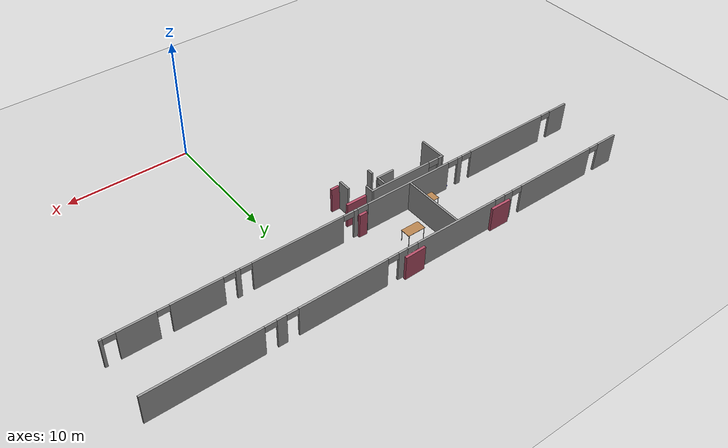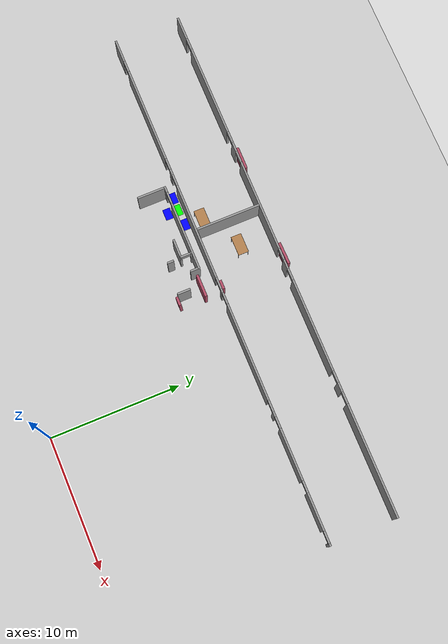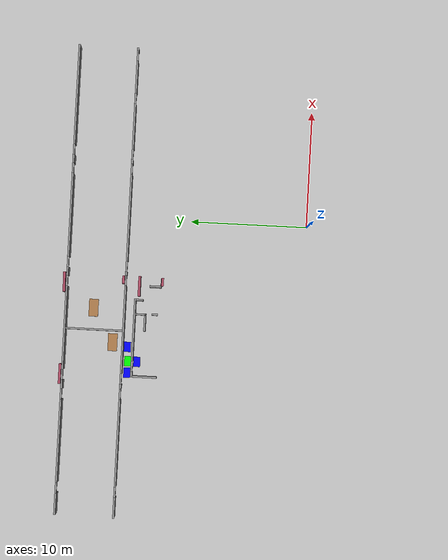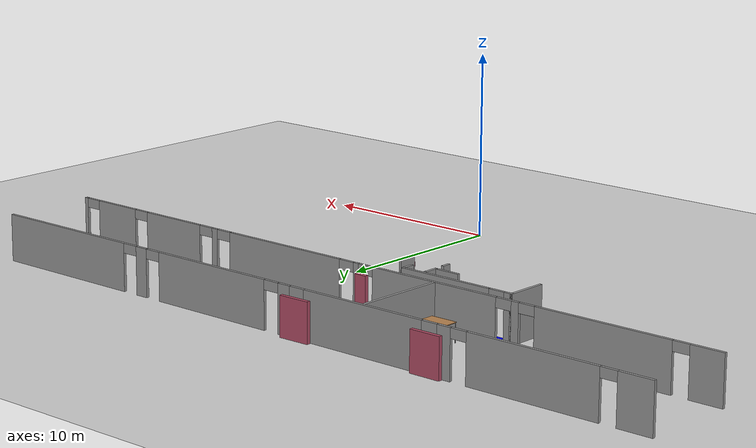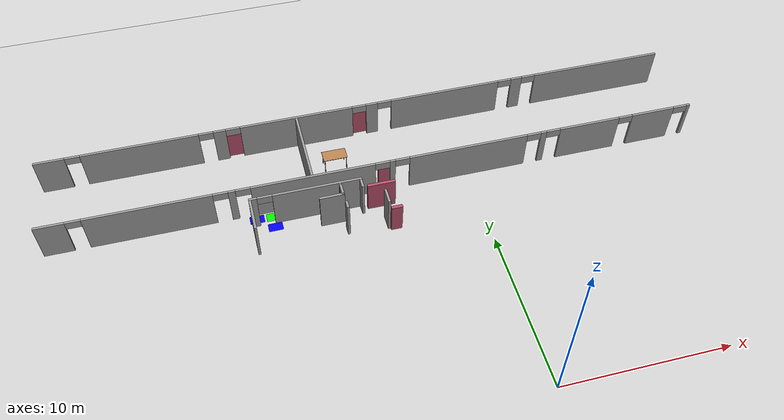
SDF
<sdf version="1.6">
 <world name="default">
  <model name="ground_plane">
   <pose>0 0 0.001 0 -0 0</pose>
   <static>1</static>
   <link name="link">
    <collision name="collision">
     <geometry><plane><normal>0 0 1</normal><size>100 100</size></plane></geometry>
     <surface><friction><ode><mu>100</mu><mu2>50</mu2></ode></friction></surface>
    </collision>
    <visual name="visual">
     <cast_shadows>0</cast_shadows>
     <geometry><plane><normal>0 0 1</normal><size>100 100</size></plane></geometry>
     <material>
      <script><uri>file://media/materials/scripts/gazebo.material</uri><name>Gazebo/Grey</name></script>
     </material>
    </visual>
   </link>
  </model>
  <model name="fin_se1f1.sdf">
   <pose>1.8125 -2.2901 0 0 -0 0</pose>
   <link name="Wall_100">
    <collision name="Wall_100_Collision">
     <geometry><box><size>2.25 0.15 2.5</size></box></geometry>
     <pose>0 0 1.25 0 -0 0</pose>
    </collision>
    <visual name="Wall_100_Visual">
     <pose>0 0 1.25 0 -0 0</pose>
     <geometry><box><size>2.25 0.15 2.5</size></box></geometry>
     <material>
      <script><uri>file://media/materials/scripts/gazebo.material</uri><name>Gazebo/Grey</name></script>
      <ambient>1 1 1 1</ambient>
     </material>
     <meta><layer>0</layer></meta>
    </visual>
    <pose>-15.464 15.7396 0 0 -0 1.5708</pose>
   </link>
   <link name="Wall_101">
    <pose>-12.164 16.7896 0.001 0 -0 0</pose>
    <visual name="Wall_101_Visual_0">
     <pose>-3.13147 0 1.25 0 -0 0</pose>
     <geometry><box><size>0.487063 0.15 2.5</size></box></geometry>
     <material>
      <script><uri>file://media/materials/scripts/gazebo.material</uri><name>Gazebo/Grey</name></script>
      <ambient>1 1 1 1</ambient>
     </material>
     <meta><layer>0</layer></meta>
    </visual>
    <collision name="Wall_101_Collision_0">
     <geometry><box><size>0.487063 0.15 2.5</size></box></geometry>
     <pose>-3.13147 0 1.25 0 -0 0</pose>
    </collision>
    <visual name="Wall_101_Visual_1">
     <pose>0.693532 0 1.25 0 -0 0</pose>
     <geometry><box><size>5.36294 0.15 2.5</size></box></geometry>
     <material>
      <script><uri>file://media/materials/scripts/gazebo.material</uri><name>Gazebo/Grey</name></script>
      <ambient>1 1 1 1</ambient>
     </material>
     <meta><layer>0</layer></meta>
    </visual>
    <collision name="Wall_101_Collision_1">
     <geometry><box><size>5.36294 0.15 2.5</size></box></geometry>
     <pose>0.693532 0 1.25 0 -0 0</pose>
    </collision>
    <visual name="Wall_101_Visual_2">
     <pose>-2.43794 0 2.25 0 -0 0</pose>
     <geometry><box><size>0.9 0.15 0.5</size></box></geometry>
     <material>
      <script><uri>file://media/materials/scripts/gazebo.material</uri><name>Gazebo/Grey</name></script>
      <ambient>1 1 1 1</ambient>
     </material>
     <meta><layer>0</layer></meta>
    </visual>
    <collision name="Wall_101_Collision_2">
     <geometry><box><size>0.9 0.15 0.5</size></box></geometry>
     <pose>-2.43794 0 2.25 0 -0 0</pose>
    </collision>
   </link>
   <link name="Wall_102">
    <collision name="Wall_102_Collision">
     <geometry><box><size>0.75 0.15 2.5</size></box></geometry>
     <pose>0 0 1.25 0 -0 0</pose>
    </collision>
    <visual name="Wall_102_Visual">
     <pose>0 0 1.25 0 -0 0</pose>
     <geometry><box><size>0.75 0.15 2.5</size></box></geometry>
     <material>
      <script><uri>file://media/materials/scripts/gazebo.material</uri><name>Gazebo/Grey</name></script>
      <ambient>1 1 1 1</ambient>
     </material>
     <meta><layer>0</layer></meta>
    </visual>
    <pose>-8.86395 16.4896 0 0 0 -1.5708</pose>
   </link>
   <link name="Wall_127">
    <pose>-10.1137 16.2977 0 0 0 -1.5708</pose>
    <visual name="Wall_127_Visual_0">
     <pose>-0.408972 0 1.25 0 -0 0</pose>
     <geometry><box><size>0.182055 0.15 2.5</size></box></geometry>
     <material>
      <script><uri>file://media/materials/scripts/gazebo.material</uri><name>Gazebo/Grey</name></script>
      <ambient>1 1 1 1</ambient>
     </material>
     <meta><layer>0</layer></meta>
    </visual>
    <collision name="Wall_127_Collision_0">
     <geometry><box><size>0.182055 0.15 2.5</size></box></geometry>
     <pose>-0.408972 0 1.25 0 -0 0</pose>
    </collision>
    <visual name="Wall_127_Visual_1">
     <pose>0.480687 0 1.25 0 -0 0</pose>
     <geometry><box><size>0.038626 0.15 2.5</size></box></geometry>
     <material>
      <script><uri>file://media/materials/scripts/gazebo.material</uri><name>Gazebo/Grey</name></script>
      <ambient>1 1 1 1</ambient>
     </material>
     <meta><layer>0</layer></meta>
    </visual>
    <collision name="Wall_127_Collision_1">
     <geometry><box><size>0.038626 0.15 2.5</size></box></geometry>
     <pose>0.480687 0 1.25 0 -0 0</pose>
    </collision>
    <visual name="Wall_127_Visual_2">
     <pose>0.071714 0 2.25 0 -0 0</pose>
     <geometry><box><size>0.779319 0.15 0.5</size></box></geometry>
     <material>
      <script><uri>file://media/materials/scripts/gazebo.material</uri><name>Gazebo/Grey</name></script>
      <ambient>1 1 1 1</ambient>
     </material>
     <meta><layer>0</layer></meta>
    </visual>
    <collision name="Wall_127_Collision_2">
     <geometry><box><size>0.779319 0.15 0.5</size></box></geometry>
     <pose>0.071714 0 2.25 0 -0 0</pose>
    </collision>
   </link>
   <link name="Wall_128">
    <collision name="Wall_128_Collision">
     <geometry><box><size>1.5 0.15 2.5</size></box></geometry>
     <pose>0 0 1.25 0 -0 0</pose>
    </collision>
    <visual name="Wall_128_Visual">
     <pose>0 0 1.25 0 -0 0</pose>
     <geometry><box><size>1.5 0.15 2.5</size></box></geometry>
     <material>
      <script><uri>file://media/materials/scripts/gazebo.material</uri><name>Gazebo/Grey</name></script>
      <ambient>1 1 1 1</ambient>
     </material>
     <meta><layer>0</layer></meta>
    </visual>
    <pose>-10.7887 15.8727 0 0 -0 3.14159</pose>
   </link>
   <link name="Wall_130">
    <collision name="Wall_130_Collision">
     <geometry><box><size>0.5 0.15 2.5</size></box></geometry>
     <pose>0 0 1.25 0 -0 0</pose>
    </collision>
    <visual name="Wall_130_Visual">
     <pose>0 0 1.25 0 -0 0</pose>
     <geometry><box><size>0.5 0.15 2.5</size></box></geometry>
     <material>
      <script><uri>file://media/materials/scripts/gazebo.material</uri><name>Gazebo/Grey</name></script>
      <ambient>1 1 1 1</ambient>
     </material>
     <meta><layer>0</layer></meta>
    </visual>
    <pose>-10.0602 15.0496 0 0 0 -1.5708</pose>
   </link>
   <link name="Wall_138">
    <collision name="Wall_138_Collision">
     <geometry><box><size>1 0.15 2.5</size></box></geometry>
     <pose>0 0 1.25 0 -0 0</pose>
    </collision>
    <visual name="Wall_138_Visual">
     <pose>0 0 1.25 0 -0 0</pose>
     <geometry><box><size>1 0.15 2.5</size></box></geometry>
     <material>
      <script><uri>file://media/materials/scripts/gazebo.material</uri><name>Gazebo/Grey</name></script>
      <ambient>1 1 1 1</ambient>
     </material>
     <meta><layer>0</layer></meta>
    </visual>
    <pose>-7.65259 15.1146 0 0 -0 1.5708</pose>
   </link>
   <link name="Wall_22">
    <pose>-7.37457 22.7246 0 0 -0 3.14159</pose>
    <visual name="Wall_22_Visual_0">
     <pose>-15.9484 0 1.25 0 -0 0</pose>
     <geometry><box><size>8.60329 0.15 2.5</size></box></geometry>
     <material>
      <script><uri>file://media/materials/scripts/gazebo.material</uri><name>Gazebo/Grey</name></script>
      <ambient>1 1 1 1</ambient>
     </material>
     <meta><layer>0</layer></meta>
    </visual>
    <collision name="Wall_22_Collision_0">
     <geometry><box><size>8.60329 0.15 2.5</size></box></geometry>
     <pose>-15.9484 0 1.25 0 -0 0</pose>
    </collision>
    <visual name="Wall_22_Visual_1">
     <pose>-10.3821 0 1.25 0 -0 0</pose>
     <geometry><box><size>0.729199 0.15 2.5</size></box></geometry>
     <material>
      <script><uri>file://media/materials/scripts/gazebo.material</uri><name>Gazebo/Grey</name></script>
      <ambient>1 1 1 1</ambient>
     </material>
     <meta><layer>0</layer></meta>
    </visual>
    <collision name="Wall_22_Collision_1">
     <geometry><box><size>0.729199 0.15 2.5</size></box></geometry>
     <pose>-10.3821 0 1.25 0 -0 0</pose>
    </collision>
    <visual name="Wall_22_Visual_2">
     <pose>-5.52468 0 1.25 0 -0 0</pose>
     <geometry><box><size>7.18566 0.15 2.5</size></box></geometry>
     <material>
      <script><uri>file://media/materials/scripts/gazebo.material</uri><name>Gazebo/Grey</name></script>
      <ambient>1 1 1 1</ambient>
     </material>
     <meta><layer>0</layer></meta>
    </visual>
    <collision name="Wall_22_Collision_2">
     <geometry><box><size>7.18566 0.15 2.5</size></box></geometry>
     <pose>-5.52468 0 1.25 0 -0 0</pose>
    </collision>
    <visual name="Wall_22_Visual_3">
     <pose>-0.657198 0 1.25 0 -0 0</pose>
     <geometry><box><size>0.749313 0.15 2.5</size></box></geometry>
     <material>
      <script><uri>file://media/materials/scripts/gazebo.material</uri><name>Gazebo/Grey</name></script>
      <ambient>1 1 1 1</ambient>
     </material>
     <meta><layer>0</layer></meta>
    </visual>
    <collision name="Wall_22_Collision_3">
     <geometry><box><size>0.749313 0.15 2.5</size></box></geometry>
     <pose>-0.657198 0 1.25 0 -0 0</pose>
    </collision>
    <visual name="Wall_22_Visual_4">
     <pose>4.19017 0 1.25 0 -0 0</pose>
     <geometry><box><size>7.14543 0.15 2.5</size></box></geometry>
     <material>
      <script><uri>file://media/materials/scripts/gazebo.material</uri><name>Gazebo/Grey</name></script>
      <ambient>1 1 1 1</ambient>
     </material>
     <meta><layer>0</layer></meta>
    </visual>
    <collision name="Wall_22_Collision_4">
     <geometry><box><size>7.14543 0.15 2.5</size></box></geometry>
     <pose>4.19017 0 1.25 0 -0 0</pose>
    </collision>
    <visual name="Wall_22_Visual_5">
     <pose>9.0476 0 1.25 0 -0 0</pose>
     <geometry><box><size>0.769426 0.15 2.5</size></box></geometry>
     <material>
      <script><uri>file://media/materials/scripts/gazebo.material</uri><name>Gazebo/Grey</name></script>
      <ambient>1 1 1 1</ambient>
     </material>
     <meta><layer>0</layer></meta>
    </visual>
    <collision name="Wall_22_Collision_5">
     <geometry><box><size>0.769426 0.15 2.5</size></box></geometry>
     <pose>9.0476 0 1.25 0 -0 0</pose>
    </collision>
    <visual name="Wall_22_Visual_6">
     <pose>13.9151 0 1.25 0 -0 0</pose>
     <geometry><box><size>7.16554 0.15 2.5</size></box></geometry>
     <material>
      <script><uri>file://media/materials/scripts/gazebo.material</uri><name>Gazebo/Grey</name></script>
      <ambient>1 1 1 1</ambient>
     </material>
     <meta><layer>0</layer></meta>
    </visual>
    <collision name="Wall_22_Collision_6">
     <geometry><box><size>7.16554 0.15 2.5</size></box></geometry>
     <pose>13.9151 0 1.25 0 -0 0</pose>
    </collision>
    <visual name="Wall_22_Visual_7">
     <pose>19.3239 0 1.25 0 -0 0</pose>
     <geometry><box><size>1.85214 0.15 2.5</size></box></geometry>
     <material>
      <script><uri>file://media/materials/scripts/gazebo.material</uri><name>Gazebo/Grey</name></script>
      <ambient>1 1 1 1</ambient>
     </material>
     <meta><layer>0</layer></meta>
    </visual>
    <collision name="Wall_22_Collision_7">
     <geometry><box><size>1.85214 0.15 2.5</size></box></geometry>
     <pose>19.3239 0 1.25 0 -0 0</pose>
    </collision>
    <visual name="Wall_22_Visual_8">
     <pose>-11.1967 0 2.25 0 -0 0</pose>
     <geometry><box><size>0.9 0.15 0.5</size></box></geometry>
     <material>
      <script><uri>file://media/materials/scripts/gazebo.material</uri><name>Gazebo/Grey</name></script>
      <ambient>1 1 1 1</ambient>
     </material>
     <meta><layer>0</layer></meta>
    </visual>
    <collision name="Wall_22_Collision_8">
     <geometry><box><size>0.9 0.15 0.5</size></box></geometry>
     <pose>-11.1967 0 2.25 0 -0 0</pose>
    </collision>
    <visual name="Wall_22_Visual_9">
     <pose>-9.56751 0 2.25 0 -0 0</pose>
     <geometry><box><size>0.9 0.15 0.5</size></box></geometry>
     <material>
      <script><uri>file://media/materials/scripts/gazebo.material</uri><name>Gazebo/Grey</name></script>
      <ambient>1 1 1 1</ambient>
     </material>
     <meta><layer>0</layer></meta>
    </visual>
    <collision name="Wall_22_Collision_9">
     <geometry><box><size>0.9 0.15 0.5</size></box></geometry>
     <pose>-9.56751 0 2.25 0 -0 0</pose>
    </collision>
    <visual name="Wall_22_Visual_10">
     <pose>-1.48185 0 2.25 0 -0 0</pose>
     <geometry><box><size>0.9 0.15 0.5</size></box></geometry>
     <material>
      <script><uri>file://media/materials/scripts/gazebo.material</uri><name>Gazebo/Grey</name></script>
      <ambient>1 1 1 1</ambient>
     </material>
     <meta><layer>0</layer></meta>
    </visual>
    <collision name="Wall_22_Collision_10">
     <geometry><box><size>0.9 0.15 0.5</size></box></geometry>
     <pose>-1.48185 0 2.25 0 -0 0</pose>
    </collision>
    <visual name="Wall_22_Visual_11">
     <pose>0.167459 0 2.25 0 -0 0</pose>
     <geometry><box><size>0.9 0.15 0.5</size></box></geometry>
     <material>
      <script><uri>file://media/materials/scripts/gazebo.material</uri><name>Gazebo/Grey</name></script>
      <ambient>1 1 1 1</ambient>
     </material>
     <meta><layer>0</layer></meta>
    </visual>
    <collision name="Wall_22_Collision_11">
     <geometry><box><size>0.9 0.15 0.5</size></box></geometry>
     <pose>0.167459 0 2.25 0 -0 0</pose>
    </collision>
    <visual name="Wall_22_Visual_12">
     <pose>8.21289 0 2.25 0 -0 0</pose>
     <geometry><box><size>0.9 0.15 0.5</size></box></geometry>
     <material>
      <script><uri>file://media/materials/scripts/gazebo.material</uri><name>Gazebo/Grey</name></script>
      <ambient>1 1 1 1</ambient>
     </material>
     <meta><layer>0</layer></meta>
    </visual>
    <collision name="Wall_22_Collision_12">
     <geometry><box><size>0.9 0.15 0.5</size></box></geometry>
     <pose>8.21289 0 2.25 0 -0 0</pose>
    </collision>
    <visual name="Wall_22_Visual_13">
     <pose>9.88231 0 2.25 0 -0 0</pose>
     <geometry><box><size>0.9 0.15 0.5</size></box></geometry>
     <material>
      <script><uri>file://media/materials/scripts/gazebo.material</uri><name>Gazebo/Grey</name></script>
      <ambient>1 1 1 1</ambient>
     </material>
     <meta><layer>0</layer></meta>
    </visual>
    <collision name="Wall_22_Collision_13">
     <geometry><box><size>0.9 0.15 0.5</size></box></geometry>
     <pose>9.88231 0 2.25 0 -0 0</pose>
    </collision>
    <visual name="Wall_22_Visual_14">
     <pose>17.9479 0 2.25 0 -0 0</pose>
     <geometry><box><size>0.9 0.15 0.5</size></box></geometry>
     <material>
      <script><uri>file://media/materials/scripts/gazebo.material</uri><name>Gazebo/Grey</name></script>
      <ambient>1 1 1 1</ambient>
     </material>
     <meta><layer>0</layer></meta>
    </visual>
    <collision name="Wall_22_Collision_14">
     <geometry><box><size>0.9 0.15 0.5</size></box></geometry>
     <pose>17.9479 0 2.25 0 -0 0</pose>
    </collision>
   </link>
   <link name="Wall_69">
    <pose>-7.41686 17.6737 0.001 0 -0 0</pose>
    <visual name="Wall_69_Visual_0">
     <pose>-19.3631 0 1.25 0 -0 0</pose>
     <geometry><box><size>1.77375 0.15 2.5</size></box></geometry>
     <material>
      <script><uri>file://media/materials/scripts/gazebo.material</uri><name>Gazebo/Grey</name></script>
      <ambient>1 1 1 1</ambient>
     </material>
     <meta><layer>0</layer></meta>
    </visual>
    <collision name="Wall_69_Collision_0">
     <geometry><box><size>1.77375 0.15 2.5</size></box></geometry>
     <pose>-19.3631 0 1.25 0 -0 0</pose>
    </collision>
    <visual name="Wall_69_Visual_1">
     <pose>-13.8326 0 1.25 0 -0 0</pose>
     <geometry><box><size>7.48736 0.15 2.5</size></box></geometry>
     <material>
      <script><uri>file://media/materials/scripts/gazebo.material</uri><name>Gazebo/Grey</name></script>
      <ambient>1 1 1 1</ambient>
     </material>
     <meta><layer>0</layer></meta>
    </visual>
    <collision name="Wall_69_Collision_1">
     <geometry><box><size>7.48736 0.15 2.5</size></box></geometry>
     <pose>-13.8326 0 1.25 0 -0 0</pose>
    </collision>
    <visual name="Wall_69_Visual_2">
     <pose>-8.97514 0 1.25 0 -0 0</pose>
     <geometry><box><size>0.427496 0.15 2.5</size></box></geometry>
     <material>
      <script><uri>file://media/materials/scripts/gazebo.material</uri><name>Gazebo/Grey</name></script>
      <ambient>1 1 1 1</ambient>
     </material>
     <meta><layer>0</layer></meta>
    </visual>
    <collision name="Wall_69_Collision_2">
     <geometry><box><size>0.427496 0.15 2.5</size></box></geometry>
     <pose>-8.97514 0 1.25 0 -0 0</pose>
    </collision>
    <visual name="Wall_69_Visual_3">
     <pose>-4.08754 0 1.25 0 -0 0</pose>
     <geometry><box><size>7.5477 0.15 2.5</size></box></geometry>
     <material>
      <script><uri>file://media/materials/scripts/gazebo.material</uri><name>Gazebo/Grey</name></script>
      <ambient>1 1 1 1</ambient>
     </material>
     <meta><layer>0</layer></meta>
    </visual>
    <collision name="Wall_69_Collision_3">
     <geometry><box><size>7.5477 0.15 2.5</size></box></geometry>
     <pose>-4.08754 0 1.25 0 -0 0</pose>
    </collision>
    <visual name="Wall_69_Visual_4">
     <pose>0.749771 0 1.25 0 -0 0</pose>
     <geometry><box><size>0.326928 0.15 2.5</size></box></geometry>
     <material>
      <script><uri>file://media/materials/scripts/gazebo.material</uri><name>Gazebo/Grey</name></script>
      <ambient>1 1 1 1</ambient>
     </material>
     <meta><layer>0</layer></meta>
    </visual>
    <collision name="Wall_69_Collision_4">
     <geometry><box><size>0.326928 0.15 2.5</size></box></geometry>
     <pose>0.749771 0 1.25 0 -0 0</pose>
    </collision>
    <visual name="Wall_69_Visual_5">
     <pose>5.56697 0 1.25 0 -0 0</pose>
     <geometry><box><size>7.50747 0.15 2.5</size></box></geometry>
     <material>
      <script><uri>file://media/materials/scripts/gazebo.material</uri><name>Gazebo/Grey</name></script>
      <ambient>1 1 1 1</ambient>
     </material>
     <meta><layer>0</layer></meta>
    </visual>
    <collision name="Wall_69_Collision_5">
     <geometry><box><size>7.50747 0.15 2.5</size></box></geometry>
     <pose>5.56697 0 1.25 0 -0 0</pose>
    </collision>
    <visual name="Wall_69_Visual_6">
     <pose>10.4043 0 1.25 0 -0 0</pose>
     <geometry><box><size>0.367155 0.15 2.5</size></box></geometry>
     <material>
      <script><uri>file://media/materials/scripts/gazebo.material</uri><name>Gazebo/Grey</name></script>
      <ambient>1 1 1 1</ambient>
     </material>
     <meta><layer>0</layer></meta>
    </visual>
    <collision name="Wall_69_Collision_6">
     <geometry><box><size>0.367155 0.15 2.5</size></box></geometry>
     <pose>10.4043 0 1.25 0 -0 0</pose>
    </collision>
    <visual name="Wall_69_Visual_7">
     <pose>13.4515 0 1.25 0 -0 0</pose>
     <geometry><box><size>3.92726 0.15 2.5</size></box></geometry>
     <material>
      <script><uri>file://media/materials/scripts/gazebo.material</uri><name>Gazebo/Grey</name></script>
      <ambient>1 1 1 1</ambient>
     </material>
     <meta><layer>0</layer></meta>
    </visual>
    <collision name="Wall_69_Collision_7">
     <geometry><box><size>3.92726 0.15 2.5</size></box></geometry>
     <pose>13.4515 0 1.25 0 -0 0</pose>
    </collision>
    <visual name="Wall_69_Visual_8">
     <pose>17.7256 0 1.25 0 -0 0</pose>
     <geometry><box><size>2.82101 0.15 2.5</size></box></geometry>
     <material>
      <script><uri>file://media/materials/scripts/gazebo.material</uri><name>Gazebo/Grey</name></script>
      <ambient>1 1 1 1</ambient>
     </material>
     <meta><layer>0</layer></meta>
    </visual>
    <collision name="Wall_69_Collision_8">
     <geometry><box><size>2.82101 0.15 2.5</size></box></geometry>
     <pose>17.7256 0 1.25 0 -0 0</pose>
    </collision>
    <visual name="Wall_69_Visual_9">
     <pose>20.1431 0 1.25 0 -0 0</pose>
     <geometry><box><size>0.21387 0.15 2.5</size></box></geometry>
     <material>
      <script><uri>file://media/materials/scripts/gazebo.material</uri><name>Gazebo/Grey</name></script>
      <ambient>1 1 1 1</ambient>
     </material>
     <meta><layer>0</layer></meta>
    </visual>
    <collision name="Wall_69_Collision_9">
     <geometry><box><size>0.21387 0.15 2.5</size></box></geometry>
     <pose>20.1431 0 1.25 0 -0 0</pose>
    </collision>
    <visual name="Wall_69_Visual_10">
     <pose>-18.0262 0 2.25 0 -0 0</pose>
     <geometry><box><size>0.9 0.15 0.5</size></box></geometry>
     <material>
      <script><uri>file://media/materials/scripts/gazebo.material</uri><name>Gazebo/Grey</name></script>
      <ambient>1 1 1 1</ambient>
     </material>
     <meta><layer>0</layer></meta>
    </visual>
    <collision name="Wall_69_Collision_10">
     <geometry><box><size>0.9 0.15 0.5</size></box></geometry>
     <pose>-18.0262 0 2.25 0 -0 0</pose>
    </collision>
    <visual name="Wall_69_Visual_11">
     <pose>-9.63889 0 2.25 0 -0 0</pose>
     <geometry><box><size>0.9 0.15 0.5</size></box></geometry>
     <material>
      <script><uri>file://media/materials/scripts/gazebo.material</uri><name>Gazebo/Grey</name></script>
      <ambient>1 1 1 1</ambient>
     </material>
     <meta><layer>0</layer></meta>
    </visual>
    <collision name="Wall_69_Collision_11">
     <geometry><box><size>0.9 0.15 0.5</size></box></geometry>
     <pose>-9.63889 0 2.25 0 -0 0</pose>
    </collision>
    <visual name="Wall_69_Visual_12">
     <pose>-8.31139 0 2.25 0 -0 0</pose>
     <geometry><box><size>0.9 0.15 0.5</size></box></geometry>
     <material>
      <script><uri>file://media/materials/scripts/gazebo.material</uri><name>Gazebo/Grey</name></script>
      <ambient>1 1 1 1</ambient>
     </material>
     <meta><layer>0</layer></meta>
    </visual>
    <collision name="Wall_69_Collision_12">
     <geometry><box><size>0.9 0.15 0.5</size></box></geometry>
     <pose>-8.31139 0 2.25 0 -0 0</pose>
    </collision>
    <visual name="Wall_69_Visual_13">
     <pose>0.136307 0 2.25 0 -0 0</pose>
     <geometry><box><size>0.9 0.15 0.5</size></box></geometry>
     <material>
      <script><uri>file://media/materials/scripts/gazebo.material</uri><name>Gazebo/Grey</name></script>
      <ambient>1 1 1 1</ambient>
     </material>
     <meta><layer>0</layer></meta>
    </visual>
    <collision name="Wall_69_Collision_13">
     <geometry><box><size>0.9 0.15 0.5</size></box></geometry>
     <pose>0.136307 0 2.25 0 -0 0</pose>
    </collision>
    <visual name="Wall_69_Visual_14">
     <pose>1.36323 0 2.25 0 -0 0</pose>
     <geometry><box><size>0.9 0.15 0.5</size></box></geometry>
     <material>
      <script><uri>file://media/materials/scripts/gazebo.material</uri><name>Gazebo/Grey</name></script>
      <ambient>1 1 1 1</ambient>
     </material>
     <meta><layer>0</layer></meta>
    </visual>
    <collision name="Wall_69_Collision_14">
     <geometry><box><size>0.9 0.15 0.5</size></box></geometry>
     <pose>1.36323 0 2.25 0 -0 0</pose>
    </collision>
    <visual name="Wall_69_Visual_15">
     <pose>9.77071 0 2.25 0 -0 0</pose>
     <geometry><box><size>0.9 0.15 0.5</size></box></geometry>
     <material>
      <script><uri>file://media/materials/scripts/gazebo.material</uri><name>Gazebo/Grey</name></script>
      <ambient>1 1 1 1</ambient>
     </material>
     <meta><layer>0</layer></meta>
    </visual>
    <collision name="Wall_69_Collision_15">
     <geometry><box><size>0.9 0.15 0.5</size></box></geometry>
     <pose>9.77071 0 2.25 0 -0 0</pose>
    </collision>
    <visual name="Wall_69_Visual_16">
     <pose>11.0379 0 2.25 0 -0 0</pose>
     <geometry><box><size>0.9 0.15 0.5</size></box></geometry>
     <material>
      <script><uri>file://media/materials/scripts/gazebo.material</uri><name>Gazebo/Grey</name></script>
      <ambient>1 1 1 1</ambient>
     </material>
     <meta><layer>0</layer></meta>
    </visual>
    <collision name="Wall_69_Collision_16">
     <geometry><box><size>0.9 0.15 0.5</size></box></geometry>
     <pose>11.0379 0 2.25 0 -0 0</pose>
    </collision>
    <visual name="Wall_69_Visual_17">
     <pose>15.8651 0 2.25 0 -0 0</pose>
     <geometry><box><size>0.9 0.15 0.5</size></box></geometry>
     <material>
      <script><uri>file://media/materials/scripts/gazebo.material</uri><name>Gazebo/Grey</name></script>
      <ambient>1 1 1 1</ambient>
     </material>
     <meta><layer>0</layer></meta>
    </visual>
    <collision name="Wall_69_Collision_17">
     <geometry><box><size>0.9 0.15 0.5</size></box></geometry>
     <pose>15.8651 0 2.25 0 -0 0</pose>
    </collision>
    <visual name="Wall_69_Visual_18">
     <pose>19.5861 0 2.25 0 -0 0</pose>
     <geometry><box><size>0.9 0.15 0.5</size></box></geometry>
     <material>
      <script><uri>file://media/materials/scripts/gazebo.material</uri><name>Gazebo/Grey</name></script>
      <ambient>1 1 1 1</ambient>
     </material>
     <meta><layer>0</layer></meta>
    </visual>
    <collision name="Wall_69_Collision_18">
     <geometry><box><size>0.9 0.15 0.5</size></box></geometry>
     <pose>19.5861 0 2.25 0 -0 0</pose>
    </collision>
   </link>
   <link name="Wall_82">
    <collision name="Wall_82_Collision">
     <geometry><box><size>5 0.15 2.5</size></box></geometry>
     <pose>0 0 1.25 0 -0 0</pose>
    </collision>
    <visual name="Wall_82_Visual">
     <pose>0 0 1.25 0 -0 0</pose>
     <geometry><box><size>5 0.15 2.5</size></box></geometry>
     <material>
      <script><uri>file://media/materials/scripts/gazebo.material</uri><name>Gazebo/Grey</name></script>
      <ambient>1 1 1 1</ambient>
     </material>
     <meta><layer>0</layer></meta>
    </visual>
    <pose>-11.5946 20.1602 0 0 -0 1.5708</pose>
   </link>
   <static>1</static>
  </model>
  <model name="table_1">
   <static>1</static>
   <link name="link">
    <collision name="surface">
     <pose>0 0 1 0 -0 0</pose>
     <geometry><box><size>1.5 0.8 0.03</size></box></geometry>
     <surface><friction><ode><mu>0.6</mu><mu2>0.6</mu2></ode></friction></surface>
    </collision>
    <visual name="visual1">
     <pose>0 0 1 0 -0 0</pose>
     <geometry><box><size>1.5 0.8 0.03</size></box></geometry>
     <material>
      <script><uri>file://media/materials/scripts/gazebo.material</uri><name>Gazebo/Wood</name></script>
     </material>
    </visual>
    <collision name="front_left_leg">
     <pose>0.68 0.38 0.5 0 -0 0</pose>
     <geometry><cylinder><radius>0.02</radius><length>1</length></cylinder></geometry>
    </collision>
    <visual name="front_left_leg">
     <pose>0.68 0.38 0.5 0 -0 0</pose>
     <geometry><cylinder><radius>0.02</radius><length>1</length></cylinder></geometry>
     <material>
      <script><uri>file://media/materials/scripts/gazebo.material</uri><name>Gazebo/Grey</name></script>
     </material>
    </visual>
    <collision name="front_right_leg">
     <pose>0.68 -0.38 0.5 0 -0 0</pose>
     <geometry><cylinder><radius>0.02</radius><length>1</length></cylinder></geometry>
    </collision>
    <visual name="front_right_leg">
     <pose>0.68 -0.38 0.5 0 -0 0</pose>
     <geometry><cylinder><radius>0.02</radius><length>1</length></cylinder></geometry>
     <material>
      <script><uri>file://media/materials/scripts/gazebo.material</uri><name>Gazebo/Grey</name></script>
     </material>
    </visual>
    <collision name="back_right_leg">
     <pose>-0.68 -0.38 0.5 0 -0 0</pose>
     <geometry><cylinder><radius>0.02</radius><length>1</length></cylinder></geometry>
    </collision>
    <visual name="back_right_leg">
     <pose>-0.68 -0.38 0.5 0 -0 0</pose>
     <geometry><cylinder><radius>0.02</radius><length>1</length></cylinder></geometry>
     <material>
      <script><uri>file://media/materials/scripts/gazebo.material</uri><name>Gazebo/Grey</name></script>
     </material>
    </visual>
    <collision name="back_left_leg">
     <pose>-0.68 0.38 0.5 0 -0 0</pose>
     <geometry><cylinder><radius>0.02</radius><length>1</length></cylinder></geometry>
    </collision>
    <visual name="back_left_leg">
     <pose>-0.68 0.38 0.5 0 -0 0</pose>
     <geometry><cylinder><radius>0.02</radius><length>1</length></cylinder></geometry>
     <material>
      <script><uri>file://media/materials/scripts/gazebo.material</uri><name>Gazebo/Grey</name></script>
     </material>
    </visual>
   </link>
   <pose>-10.8094 16.2859 0.001 0 -0 0</pose>
  </model>
  <model name="table_5">
   <static>1</static>
   <link name="link">
    <collision name="surface">
     <pose>0 0 1 0 -0 0</pose>
     <geometry><box><size>1.5 0.8 0.03</size></box></geometry>
     <surface><friction><ode><mu>0.6</mu><mu2>0.6</mu2></ode></friction></surface>
    </collision>
    <visual name="visual1">
     <pose>0 0 1 0 -0 0</pose>
     <geometry><box><size>1.5 0.8 0.03</size></box></geometry>
     <material>
      <script><uri>file://media/materials/scripts/gazebo.material</uri><name>Gazebo/Wood</name></script>
     </material>
    </visual>
    <collision name="front_left_leg">
     <pose>0.68 0.38 0.5 0 -0 0</pose>
     <geometry><cylinder><radius>0.02</radius><length>1</length></cylinder></geometry>
    </collision>
    <visual name="front_left_leg">
     <pose>0.68 0.38 0.5 0 -0 0</pose>
     <geometry><cylinder><radius>0.02</radius><length>1</length></cylinder></geometry>
     <material>
      <script><uri>file://media/materials/scripts/gazebo.material</uri><name>Gazebo/Grey</name></script>
     </material>
    </visual>
    <collision name="front_right_leg">
     <pose>0.68 -0.38 0.5 0 -0 0</pose>
     <geometry><cylinder><radius>0.02</radius><length>1</length></cylinder></geometry>
    </collision>
    <visual name="front_right_leg">
     <pose>0.68 -0.38 0.5 0 -0 0</pose>
     <geometry><cylinder><radius>0.02</radius><length>1</length></cylinder></geometry>
     <material>
      <script><uri>file://media/materials/scripts/gazebo.material</uri><name>Gazebo/Grey</name></script>
     </material>
    </visual>
    <collision name="back_right_leg">
     <pose>-0.68 -0.38 0.5 0 -0 0</pose>
     <geometry><cylinder><radius>0.02</radius><length>1</length></cylinder></geometry>
    </collision>
    <visual name="back_right_leg">
     <pose>-0.68 -0.38 0.5 0 -0 0</pose>
     <geometry><cylinder><radius>0.02</radius><length>1</length></cylinder></geometry>
     <material>
      <script><uri>file://media/materials/scripts/gazebo.material</uri><name>Gazebo/Grey</name></script>
     </material>
    </visual>
    <collision name="back_left_leg">
     <pose>-0.68 0.38 0.5 0 -0 0</pose>
     <geometry><cylinder><radius>0.02</radius><length>1</length></cylinder></geometry>
    </collision>
    <visual name="back_left_leg">
     <pose>-0.68 0.38 0.5 0 -0 0</pose>
     <geometry><cylinder><radius>0.02</radius><length>1</length></cylinder></geometry>
     <material>
      <script><uri>file://media/materials/scripts/gazebo.material</uri><name>Gazebo/Grey</name></script>
     </material>
    </visual>
   </link>
   <pose>-7.90698 18.0796 0.001 0 -0 0</pose>
  </model>
  <model name="doorOutside_clone_1">
   <link name="link">
    <pose>0.155539 -0.366282 0.216958 0 -0 0</pose>
    <inertial>
     <mass>2.13199</mass>
     <inertia>
      <ixx>0.452656</ixx>
      <ixy>0</ixy>
      <ixz>0</ixz>
      <iyy>0.796738</iyy>
      <iyz>0</iyz>
      <izz>0.699414</izz>
     </inertia>
     <pose>0 0 0.001 0 -0 0</pose>
    </inertial>
    <visual name="visual">
     <geometry><box><size>1.71368 0.198843 2.05986</size></box></geometry>
     <material>
      <script><name>Gazebo/Grey</name><uri>file://media/materials/scripts/gazebo.material</uri></script>
      <ambient>0.7 0.3 0.4 1</ambient>
      <diffuse>0.7 0.7 0.7 1</diffuse>
      <specular>0.01 0.01 0.01 1</specular>
      <emissive>0 0 0 1</emissive>
      <shader type="vertex"><normal_map>__default__</normal_map></shader>
      <lighting>0</lighting>
     </material>
     <pose>0 0 0.001 0 -0 0</pose>
    </visual>
    <collision name="collision">
     <pose>0 0 0.001 0 -0 0</pose>
     <geometry><box><size>1.71368 0.198843 2.05986</size></box></geometry>
     <surface>
      <friction>
       <ode><mu>1</mu><mu2>1</mu2><fdir1>0 0 0</fdir1><slip1>0</slip1><slip2>0</slip2></ode>
       <torsional>
        <coefficient>1</coefficient>
        <patch_radius>0</patch_radius>
        <surface_radius>0</surface_radius>
        <use_patch_radius>1</use_patch_radius>
        <ode><slip>0</slip></ode>
       </torsional>
      </friction>
      <bounce><restitution_coefficient>0</restitution_coefficient><threshold>1e+06</threshold></bounce>
      <contact>
       <collide_without_contact>0</collide_without_contact>
       <collide_without_contact_bitmask>1</collide_without_contact_bitmask>
       <collide_bitmask>1</collide_bitmask>
       <ode>
        <soft_cfm>0</soft_cfm>
        <soft_erp>0.2</soft_erp>
        <kp>1e+13</kp>
        <kd>1</kd>
        <max_vel>0.01</max_vel>
        <min_depth>0</min_depth>
       </ode>
       <bullet>
        <split_impulse>1</split_impulse>
        <split_impulse_penetration_threshold>-0.01</split_impulse_penetration_threshold>
        <soft_cfm>0</soft_cfm>
        <soft_erp>0.2</soft_erp>
        <kp>1e+13</kp>
        <kd>1</kd>
       </bullet>
      </contact>
     </surface>
    </collision>
   </link>
   <static>1</static>
   <pose>-13.8904 21.029 0.812972 0 0 -0.003731</pose>
  </model>
  <model name="doorOutside_clone_2">
   <link name="link">
    <pose>0.155539 -0.366282 0.216958 0 -0 0</pose>
    <inertial>
     <mass>2.13199</mass>
     <inertia>
      <ixx>0.452656</ixx>
      <ixy>0</ixy>
      <ixz>0</ixz>
      <iyy>0.796738</iyy>
      <iyz>0</iyz>
      <izz>0.699414</izz>
     </inertia>
     <pose>0 0 0.001 0 -0 0</pose>
    </inertial>
    <visual name="visual">
     <geometry><box><size>1.71368 0.198843 2.05986</size></box></geometry>
     <material>
      <script><name>Gazebo/Grey</name><uri>file://media/materials/scripts/gazebo.material</uri></script>
      <ambient>0.7 0.3 0.4 1</ambient>
      <diffuse>0.7 0.7 0.7 1</diffuse>
      <specular>0.01 0.01 0.01 1</specular>
      <emissive>0 0 0 1</emissive>
      <shader type="vertex"><normal_map>__default__</normal_map></shader>
      <lighting>0</lighting>
     </material>
     <pose>0 0 0.001 0 -0 0</pose>
    </visual>
    <collision name="collision">
     <pose>0 0 0.001 0 -0 0</pose>
     <geometry><box><size>1.71368 0.198843 2.05986</size></box></geometry>
     <surface>
      <friction>
       <ode><mu>1</mu><mu2>1</mu2><fdir1>0 0 0</fdir1><slip1>0</slip1><slip2>0</slip2></ode>
       <torsional>
        <coefficient>1</coefficient>
        <patch_radius>0</patch_radius>
        <surface_radius>0</surface_radius>
        <use_patch_radius>1</use_patch_radius>
        <ode><slip>0</slip></ode>
       </torsional>
      </friction>
      <bounce><restitution_coefficient>0</restitution_coefficient><threshold>1e+06</threshold></bounce>
      <contact>
       <collide_without_contact>0</collide_without_contact>
       <collide_without_contact_bitmask>1</collide_without_contact_bitmask>
       <collide_bitmask>1</collide_bitmask>
       <ode>
        <soft_cfm>0</soft_cfm>
        <soft_erp>0.2</soft_erp>
        <kp>1e+13</kp>
        <kd>1</kd>
        <max_vel>0.01</max_vel>
        <min_depth>0</min_depth>
       </ode>
       <bullet>
        <split_impulse>1</split_impulse>
        <split_impulse_penetration_threshold>-0.01</split_impulse_penetration_threshold>
        <soft_cfm>0</soft_cfm>
        <soft_erp>0.2</soft_erp>
        <kp>1e+13</kp>
        <kd>1</kd>
       </bullet>
      </contact>
     </surface>
    </collision>
   </link>
   <static>1</static>
   <pose>-5.9657 21.0537 0.812972 -0 3e-06 0.023078</pose>
  </model>
  <model name="intersection_9">
   <link name="link">
    <pose>0 0 0.001 0 -0 0</pose>
    <inertial>
     <mass>0.0352517</mass>
     <inertia>
      <ixx>0.000997067</ixx>
      <ixy>0</ixy>
      <ixz>0</ixz>
      <iyy>0.00220147</iyy>
      <iyz>0</iyz>
      <izz>0.0031692</izz>
     </inertia>
     <pose>0 0 0.001 0 -0 0</pose>
    </inertial>
    <visual name="visual">
     <geometry><box><size>0.862743 0.578289 1e-06</size></box></geometry>
     <material>
      <script><name>Gazebo/Grey</name><uri>file://media/materials/scripts/gazebo.material</uri></script>
      <ambient>0 0 1 1</ambient>
      <diffuse>0 0 1 1</diffuse>
      <specular>0 0 1 1</specular>
      <emissive>0 0 1 1</emissive>
      <shader type="vertex"><normal_map>__default__</normal_map></shader>
     </material>
     <pose>0 0 0.001 0 -0 0</pose>
    </visual>
    <collision name="collision">
     <pose>0 0 0.001 0 -0 0</pose>
     <geometry><box><size>0.862743 0.578289 0.000477</size></box></geometry>
     <surface>
      <friction>
       <ode><mu>1</mu><mu2>1</mu2><fdir1>0 0 0</fdir1><slip1>0</slip1><slip2>0</slip2></ode>
       <torsional>
        <coefficient>1</coefficient>
        <patch_radius>0</patch_radius>
        <surface_radius>0</surface_radius>
        <use_patch_radius>1</use_patch_radius>
        <ode><slip>0</slip></ode>
       </torsional>
      </friction>
      <bounce><restitution_coefficient>0</restitution_coefficient><threshold>1e+06</threshold></bounce>
      <contact>
       <collide_without_contact>0</collide_without_contact>
       <collide_without_contact_bitmask>1</collide_without_contact_bitmask>
       <collide_bitmask>1</collide_bitmask>
       <ode>
        <soft_cfm>0</soft_cfm>
        <soft_erp>0.2</soft_erp>
        <kp>1e+13</kp>
        <kd>1</kd>
        <max_vel>0.01</max_vel>
        <min_depth>0</min_depth>
       </ode>
       <bullet>
        <split_impulse>1</split_impulse>
        <split_impulse_penetration_threshold>-0.01</split_impulse_penetration_threshold>
        <soft_cfm>0</soft_cfm>
        <soft_erp>0.2</soft_erp>
        <kp>1e+13</kp>
        <kd>1</kd>
       </bullet>
      </contact>
     </surface>
    </collision>
   </link>
   <static>1</static>
   <pose>-12.4023 14.1238 0 0 -0 0</pose>
  </model>
  <model name="doorInside_10">
   <link name="link">
    <pose>0.712274 -0.220649 0.216958 0 -0 0</pose>
    <inertial>
     <mass>0.840612</mass>
     <inertia>
      <ixx>0.178476</ixx>
      <ixy>0</ixy>
      <ixz>0</ixz>
      <iyy>0.140406</iyy>
      <iyz>0</iyz>
      <izz>0.102032</izz>
     </inertia>
     <pose>0 0 0.001 0 -0 0</pose>
    </inertial>
    <visual name="visual">
     <geometry><box><size>0.675678 0.198843 2.05986</size></box></geometry>
     <material>
      <script><name>Gazebo/Grey</name><uri>file://media/materials/scripts/gazebo.material</uri></script>
      <ambient>0.7 0.3 0.4 1</ambient>
      <diffuse>0.7 0.7 0.7 1</diffuse>
      <specular>0.01 0.01 0.01 1</specular>
      <emissive>1 0 0 1</emissive>
      <shader type="vertex"><normal_map>__default__</normal_map></shader>
      <lighting>0</lighting>
     </material>
     <pose>0 0 0.001 0 -0 0</pose>
    </visual>
    <collision name="collision">
     <pose>0 0 0.001 0 -0 0</pose>
     <geometry><box><size>0.675678 0.198843 2.05986</size></box></geometry>
     <surface>
      <friction>
       <ode><mu>1</mu><mu2>1</mu2><fdir1>0 0 0</fdir1><slip1>0</slip1><slip2>0</slip2></ode>
       <torsional>
        <coefficient>1</coefficient>
        <patch_radius>0</patch_radius>
        <surface_radius>0</surface_radius>
        <use_patch_radius>1</use_patch_radius>
        <ode><slip>0</slip></ode>
       </torsional>
      </friction>
      <bounce><restitution_coefficient>0</restitution_coefficient><threshold>1e+06</threshold></bounce>
      <contact>
       <collide_without_contact>0</collide_without_contact>
       <collide_without_contact_bitmask>1</collide_without_contact_bitmask>
       <collide_bitmask>1</collide_bitmask>
       <ode>
        <soft_cfm>0</soft_cfm>
        <soft_erp>0.2</soft_erp>
        <kp>1e+13</kp>
        <kd>1</kd>
        <max_vel>0.01</max_vel>
        <min_depth>0</min_depth>
       </ode>
       <bullet>
        <split_impulse>1</split_impulse>
        <split_impulse_penetration_threshold>-0.01</split_impulse_penetration_threshold>
        <soft_cfm>0</soft_cfm>
        <soft_erp>0.2</soft_erp>
        <kp>1e+13</kp>
        <kd>1</kd>
       </bullet>
      </contact>
     </surface>
    </collision>
   </link>
   <static>0</static>
   <pose>-6.13493 12.4842 0.821971 0.032593 1e-06 0</pose>
  </model>
  <model name="doorInside_11">
   <link name="link">
    <pose>0.712274 -0.220649 0.216958 0 -0 0</pose>
    <inertial>
     <mass>0.840612</mass>
     <inertia>
      <ixx>0.178476</ixx>
      <ixy>0</ixy>
      <ixz>0</ixz>
      <iyy>0.140406</iyy>
      <iyz>0</iyz>
      <izz>0.102032</izz>
     </inertia>
     <pose>0 0 0.001 0 -0 0</pose>
    </inertial>
    <visual name="visual">
     <geometry><box><size>0.675678 0.198843 2.05986</size></box></geometry>
     <material>
      <script><name>Gazebo/Grey</name><uri>file://media/materials/scripts/gazebo.material</uri></script>
      <ambient>0.7 0.3 0.4 1</ambient>
      <diffuse>0.7 0.7 0.7 1</diffuse>
      <specular>0.01 0.01 0.01 1</specular>
      <emissive>1 0 0 1</emissive>
      <shader type="vertex"><normal_map>__default__</normal_map></shader>
      <lighting>0</lighting>
     </material>
     <pose>0 0 0.001 0 -0 0</pose>
    </visual>
    <collision name="collision">
     <pose>0 0 0.001 0 -0 0</pose>
     <geometry><box><size>0.675678 0.198843 2.05986</size></box></geometry>
     <surface>
      <friction>
       <ode><mu>1</mu><mu2>1</mu2><fdir1>0 0 0</fdir1><slip1>0</slip1><slip2>0</slip2></ode>
       <torsional>
        <coefficient>1</coefficient>
        <patch_radius>0</patch_radius>
        <surface_radius>0</surface_radius>
        <use_patch_radius>1</use_patch_radius>
        <ode><slip>0</slip></ode>
       </torsional>
      </friction>
      <bounce><restitution_coefficient>0</restitution_coefficient><threshold>1e+06</threshold></bounce>
      <contact>
       <collide_without_contact>0</collide_without_contact>
       <collide_without_contact_bitmask>1</collide_without_contact_bitmask>
       <collide_bitmask>1</collide_bitmask>
       <ode>
        <soft_cfm>0</soft_cfm>
        <soft_erp>0.2</soft_erp>
        <kp>1e+13</kp>
        <kd>1</kd>
        <max_vel>0.01</max_vel>
        <min_depth>0</min_depth>
       </ode>
       <bullet>
        <split_impulse>1</split_impulse>
        <split_impulse_penetration_threshold>-0.01</split_impulse_penetration_threshold>
        <soft_cfm>0</soft_cfm>
        <soft_erp>0.2</soft_erp>
        <kp>1e+13</kp>
        <kd>1</kd>
       </bullet>
      </contact>
     </surface>
    </collision>
   </link>
   <static>0</static>
   <pose>-6.07409 15.8186 0.811972 0 0 -0.000656</pose>
  </model>
  <model name="corridor_18">
   <link name="link">
    <pose>0 0 0.001 0 -0 0</pose>
    <inertial>
     <mass>0.0352517</mass>
     <inertia>
      <ixx>0.00099707</ixx>
      <ixy>0</ixy>
      <ixz>0</ixz>
      <iyy>0.00220147</iyy>
      <iyz>0</iyz>
      <izz>0.0031692</izz>
     </inertia>
     <pose>0 0 0.001 0 -0 0</pose>
    </inertial>
    <visual name="visual">
     <geometry><box><size>0.862743 0.578289 1e-06</size></box></geometry>
     <material>
      <script><name>Gazebo/Grey</name><uri>file://media/materials/scripts/gazebo.material</uri></script>
      <ambient>0 1 0 1</ambient>
      <diffuse>0 1 0 1</diffuse>
      <specular>0 1 0 1</specular>
      <emissive>0 1 0 1</emissive>
      <shader type="vertex"><normal_map>__default__</normal_map></shader>
     </material>
     <pose>0 0 0.001 0 -0 0</pose>
    </visual>
    <collision name="collision">
     <pose>0 0 0.001 0 -0 0</pose>
     <geometry><box><size>0.862743 0.578289 0.000477</size></box></geometry>
     <surface>
      <friction>
       <ode><mu>1</mu><mu2>1</mu2><fdir1>0 0 0</fdir1><slip1>0</slip1><slip2>0</slip2></ode>
       <torsional>
        <coefficient>1</coefficient>
        <patch_radius>0</patch_radius>
        <surface_radius>0</surface_radius>
        <use_patch_radius>1</use_patch_radius>
        <ode><slip>0</slip></ode>
       </torsional>
      </friction>
      <bounce><restitution_coefficient>0</restitution_coefficient><threshold>1e+06</threshold></bounce>
      <contact>
       <collide_without_contact>0</collide_without_contact>
       <collide_without_contact_bitmask>1</collide_without_contact_bitmask>
       <collide_bitmask>1</collide_bitmask>
       <ode>
        <soft_cfm>0</soft_cfm>
        <soft_erp>0.2</soft_erp>
        <kp>1e+13</kp>
        <kd>1</kd>
        <max_vel>0.01</max_vel>
        <min_depth>0</min_depth>
       </ode>
       <bullet>
        <split_impulse>1</split_impulse>
        <split_impulse_penetration_threshold>-0.01</split_impulse_penetration_threshold>
        <soft_cfm>0</soft_cfm>
        <soft_erp>0.2</soft_erp>
        <kp>1e+13</kp>
        <kd>1</kd>
       </bullet>
      </contact>
     </surface>
    </collision>
   </link>
   <static>1</static>
   <pose>-12.3901 14.9241 0 0 -0 0</pose>
  </model>
  <model name="intersection_45">
   <link name="link">
    <pose>0 0 0.001 0 -0 0</pose>
    <inertial>
     <mass>0.0352517</mass>
     <inertia>
      <ixx>0.000997067</ixx>
      <ixy>0</ixy>
      <ixz>0</ixz>
      <iyy>0.00220147</iyy>
      <iyz>0</iyz>
      <izz>0.0031692</izz>
     </inertia>
     <pose>0 0 0.001 0 -0 0</pose>
    </inertial>
    <visual name="visual">
     <geometry><box><size>0.862743 0.578289 1e-06</size></box></geometry>
     <material>
      <script><name>Gazebo/Grey</name><uri>file://media/materials/scripts/gazebo.material</uri></script>
      <ambient>0 0 1 1</ambient>
      <diffuse>0 0 1 1</diffuse>
      <specular>0 0 1 1</specular>
      <emissive>0 0 1 1</emissive>
      <shader type="vertex"><normal_map>__default__</normal_map></shader>
     </material>
     <pose>0 0 0.001 0 -0 0</pose>
    </visual>
    <collision name="collision">
     <pose>0 0 0.001 0 -0 0</pose>
     <geometry><box><size>0.862743 0.578289 0.000477</size></box></geometry>
     <surface>
      <friction>
       <ode><mu>1</mu><mu2>1</mu2><fdir1>0 0 0</fdir1><slip1>0</slip1><slip2>0</slip2></ode>
       <torsional>
        <coefficient>1</coefficient>
        <patch_radius>0</patch_radius>
        <surface_radius>0</surface_radius>
        <use_patch_radius>1</use_patch_radius>
        <ode><slip>0</slip></ode>
       </torsional>
      </friction>
      <bounce><restitution_coefficient>0</restitution_coefficient><threshold>1e+06</threshold></bounce>
      <contact>
       <collide_without_contact>0</collide_without_contact>
       <collide_without_contact_bitmask>1</collide_without_contact_bitmask>
       <collide_bitmask>1</collide_bitmask>
       <ode>
        <soft_cfm>0</soft_cfm>
        <soft_erp>0.2</soft_erp>
        <kp>1e+13</kp>
        <kd>1</kd>
        <max_vel>0.01</max_vel>
        <min_depth>0</min_depth>
       </ode>
       <bullet>
        <split_impulse>1</split_impulse>
        <split_impulse_penetration_threshold>-0.01</split_impulse_penetration_threshold>
        <soft_cfm>0</soft_cfm>
        <soft_erp>0.2</soft_erp>
        <kp>1e+13</kp>
        <kd>1</kd>
       </bullet>
      </contact>
     </surface>
    </collision>
   </link>
   <static>1</static>
   <pose>-13.3866 14.9409 0 0 -0 0</pose>
  </model>
  <model name="intersection_4">
   <link name="link">
    <pose>0 0 0.001 0 -0 0</pose>
    <inertial>
     <mass>0.0352517</mass>
     <inertia>
      <ixx>0.000997067</ixx>
      <ixy>0</ixy>
      <ixz>0</ixz>
      <iyy>0.00220147</iyy>
      <iyz>0</iyz>
      <izz>0.0031692</izz>
     </inertia>
     <pose>0 0 0.001 0 -0 0</pose>
    </inertial>
    <visual name="visual">
     <geometry><box><size>0.862743 0.578289 1e-06</size></box></geometry>
     <material>
      <script><name>Gazebo/Grey</name><uri>file://media/materials/scripts/gazebo.material</uri></script>
      <ambient>0 0 1 1</ambient>
      <diffuse>0 0 1 1</diffuse>
      <specular>0 0 1 1</specular>
      <emissive>0 0 1 1</emissive>
      <shader type="vertex"><normal_map>__default__</normal_map></shader>
     </material>
     <pose>0 0 0.001 0 -0 0</pose>
    </visual>
    <collision name="collision">
     <pose>0 0 0.001 0 -0 0</pose>
     <geometry><box><size>0.862743 0.578289 0.000477</size></box></geometry>
     <surface>
      <friction>
       <ode><mu>1</mu><mu2>1</mu2><fdir1>0 0 0</fdir1><slip1>0</slip1><slip2>0</slip2></ode>
       <torsional>
        <coefficient>1</coefficient>
        <patch_radius>0</patch_radius>
        <surface_radius>0</surface_radius>
        <use_patch_radius>1</use_patch_radius>
        <ode><slip>0</slip></ode>
       </torsional>
      </friction>
      <bounce><restitution_coefficient>0</restitution_coefficient><threshold>1e+06</threshold></bounce>
      <contact>
       <collide_without_contact>0</collide_without_contact>
       <collide_without_contact_bitmask>1</collide_without_contact_bitmask>
       <collide_bitmask>1</collide_bitmask>
       <ode>
        <soft_cfm>0</soft_cfm>
        <soft_erp>0.2</soft_erp>
        <kp>1e+13</kp>
        <kd>1</kd>
        <max_vel>0.01</max_vel>
        <min_depth>0</min_depth>
       </ode>
       <bullet>
        <split_impulse>1</split_impulse>
        <split_impulse_penetration_threshold>-0.01</split_impulse_penetration_threshold>
        <soft_cfm>0</soft_cfm>
        <soft_erp>0.2</soft_erp>
        <kp>1e+13</kp>
        <kd>1</kd>
       </bullet>
      </contact>
     </surface>
    </collision>
   </link>
   <static>1</static>
   <pose>-11.1467 15.0113 0 0 -0 0</pose>
  </model>
  <model name="doorOutside_3">
   <link name="link">
    <pose>0.155539 -0.366282 0.216958 0 -0 0</pose>
    <inertial>
     <mass>2.13199</mass>
     <inertia>
      <ixx>0.452656</ixx>
      <ixy>0</ixy>
      <ixz>0</ixz>
      <iyy>0.796738</iyy>
      <iyz>0</iyz>
      <izz>0.699414</izz>
     </inertia>
    </inertial>
    <visual name="visual">
     <geometry><box><size>1.71368 0.198843 2.05986</size></box></geometry>
     <material>
      <script><name>Gazebo/Grey</name><uri>file://media/materials/scripts/gazebo.material</uri></script>
      <ambient>0.7 0.3 0.4 1</ambient>
      <diffuse>0.7 0.7 0.7 1</diffuse>
      <specular>0.01 0.01 0.01 1</specular>
      <emissive>0 0 0 1</emissive>
      <shader type="vertex"><normal_map>__default__</normal_map></shader>
      <lighting>0</lighting>
     </material>
    </visual>
    <collision name="collision">
     <geometry><box><size>1.71368 0.198843 2.05986</size></box></geometry>
     <surface>
      <friction>
       <ode><mu>1</mu><mu2>1</mu2><fdir1>0 0 0</fdir1><slip1>0</slip1><slip2>0</slip2></ode>
       <torsional>
        <coefficient>1</coefficient>
        <patch_radius>0</patch_radius>
        <surface_radius>0</surface_radius>
        <use_patch_radius>1</use_patch_radius>
        <ode><slip>0</slip></ode>
       </torsional>
      </friction>
      <bounce><restitution_coefficient>0</restitution_coefficient><threshold>1e+06</threshold></bounce>
      <contact>
       <collide_without_contact>0</collide_without_contact>
       <collide_without_contact_bitmask>1</collide_without_contact_bitmask>
       <collide_bitmask>1</collide_bitmask>
       <ode>
        <soft_cfm>0</soft_cfm>
        <soft_erp>0.2</soft_erp>
        <kp>1e+13</kp>
        <kd>1</kd>
        <max_vel>0.01</max_vel>
        <min_depth>0</min_depth>
       </ode>
       <bullet>
        <split_impulse>1</split_impulse>
        <split_impulse_penetration_threshold>-0.01</split_impulse_penetration_threshold>
        <soft_cfm>0</soft_cfm>
        <soft_erp>0.2</soft_erp>
        <kp>1e+13</kp>
        <kd>1</kd>
       </bullet>
      </contact>
     </surface>
    </collision>
   </link>
   <static>0</static>
   <pose>-6.01187 14.5775 0.812969 0 -3e-06 -8e-05</pose>
  </model>
 </world>
</sdf>
